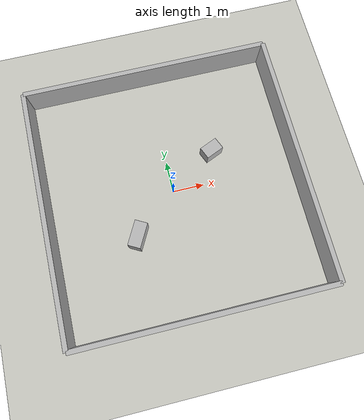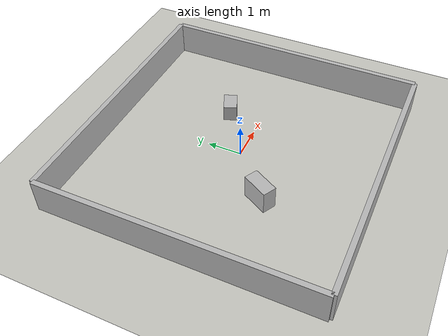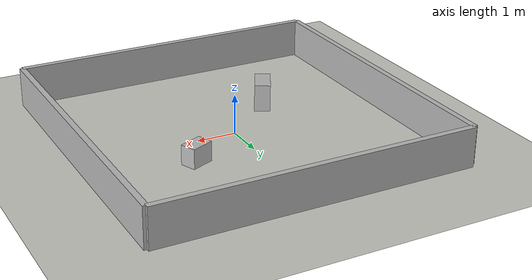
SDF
<?xml version="1.0"?>
<sdf version="1.8">
  <world name="mecanum_world">
    <plugin filename="gz-sim-physics-system" name="gz::sim::systems::Physics"/>
    <plugin filename="gz-sim-scene-broadcaster-system" name="gz::sim::systems::SceneBroadcaster"/>
    <plugin filename="gz-sim-user-commands-system" name="gz::sim::systems::UserCommands"/>
    <plugin filename="gz-sim-sensors-system" name="gz::sim::systems::Sensors">
      <render_engine>ogre2</render_engine>
    </plugin>

    <physics name="physics" type="ode">
      <max_step_size>0.001</max_step_size>
      <real_time_factor>1.0</real_time_factor>
      <real_time_update_rate>1000</real_time_update_rate>
    </physics>

    <gravity>0 0 -9.81</gravity>

    <scene>
      <ambient>0.8 0.8 0.8 1</ambient>
      <background>0.70 0.72 0.74 1</background>
      <shadows>true</shadows>
    </scene>

    <light name="sun" type="directional">
      <cast_shadows>true</cast_shadows>
      <pose>0 0 10 0 0 0</pose>
      <diffuse>0.9 0.9 0.9 1</diffuse>
      <specular>0.2 0.2 0.2 1</specular>
      <direction>-0.4 0.2 -0.9</direction>
    </light>

    <model name="ground_plane">
      <static>true</static>
      <link name="link">
        <collision name="collision">
          <geometry>
            <plane>
              <normal>0 0 1</normal>
              <size>20 20</size>
            </plane>
          </geometry>
        </collision>
        <visual name="visual">
          <geometry>
            <plane>
              <normal>0 0 1</normal>
              <size>20 20</size>
            </plane>
          </geometry>
          <material>
            <ambient>0.78 0.78 0.75 1</ambient>
            <diffuse>0.78 0.78 0.75 1</diffuse>
          </material>
        </visual>
      </link>
    </model>

    <model name="front_wall">
      <static>true</static>
      <pose>0 4 0.5 0 0 0</pose>
      <link name="link">
        <collision name="collision"><geometry><box><size>8 0.15 1.0</size></box></geometry></collision>
        <visual name="visual"><geometry><box><size>8 0.15 1.0</size></box></geometry></visual>
      </link>
    </model>

    <model name="rear_wall">
      <static>true</static>
      <pose>0 -4 0.5 0 0 0</pose>
      <link name="link">
        <collision name="collision"><geometry><box><size>8 0.15 1.0</size></box></geometry></collision>
        <visual name="visual"><geometry><box><size>8 0.15 1.0</size></box></geometry></visual>
      </link>
    </model>

    <model name="left_wall">
      <static>true</static>
      <pose>-4 0 0.5 0 0 0</pose>
      <link name="link">
        <collision name="collision"><geometry><box><size>0.15 8 1.0</size></box></geometry></collision>
        <visual name="visual"><geometry><box><size>0.15 8 1.0</size></box></geometry></visual>
      </link>
    </model>

    <model name="right_wall">
      <static>true</static>
      <pose>4 0 0.5 0 0 0</pose>
      <link name="link">
        <collision name="collision"><geometry><box><size>0.15 8 1.0</size></box></geometry></collision>
        <visual name="visual"><geometry><box><size>0.15 8 1.0</size></box></geometry></visual>
      </link>
    </model>

    <model name="scan_box_1">
      <static>true</static>
      <pose>1.5 1.0 0.25 0 0 0.4</pose>
      <link name="link">
        <collision name="collision"><geometry><box><size>0.6 0.4 0.5</size></box></geometry></collision>
        <visual name="visual"><geometry><box><size>0.6 0.4 0.5</size></box></geometry></visual>
      </link>
    </model>

    <model name="scan_box_2">
      <static>true</static>
      <pose>-1.4 -1.2 0.35 0 0 -0.5</pose>
      <link name="link">
        <collision name="collision"><geometry><box><size>0.4 0.8 0.7</size></box></geometry></collision>
        <visual name="visual"><geometry><box><size>0.4 0.8 0.7</size></box></geometry></visual>
      </link>
    </model>
  </world>
</sdf>
